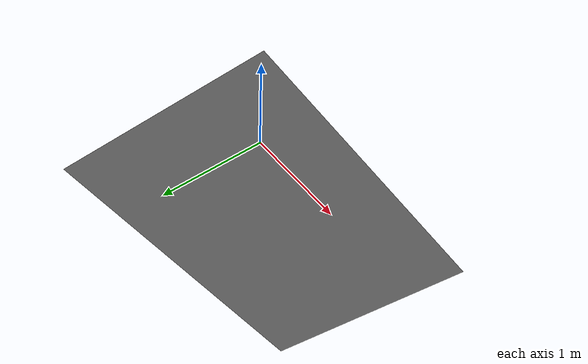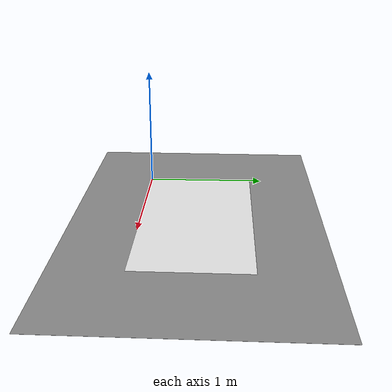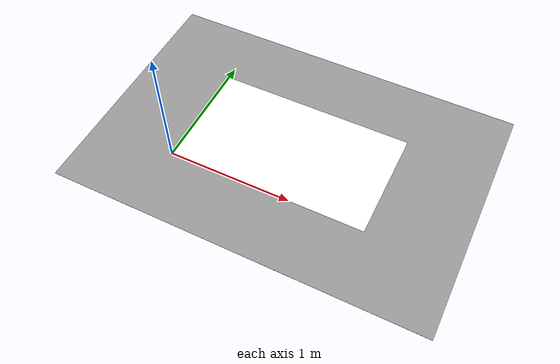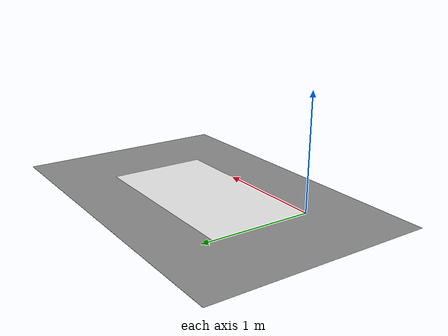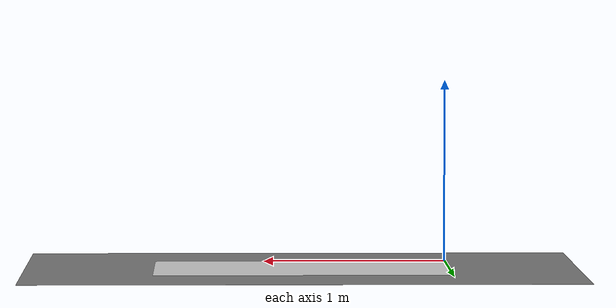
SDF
<?xml version="1.0"?>
<!--
  ライントレースのコース
  コース画像（2.5 mm/pixel，640 x 360 pixel 相当）を 1.6 m x 0.9 m の床に貼る．
  座標は mbd_phs3 と同じ（x 軸が右，y 軸が上，原点はコースの左下）．
-->
<sdf version="1.9">
  <model name="lf_course">
    <static>true</static>
    <link name="floor">
      <collision name="collision">
        <pose>0.8 0.45 -0.005 0 0 0</pose>
        <geometry>
          <box><size>3.0 2.0 0.01</size></box>
        </geometry>
        <surface>
          <friction><ode><mu>1.0</mu><mu2>1.0</mu2></ode></friction>
        </surface>
      </collision>
      <visual name="course">
        <pose>0 0 0.0005 0 0 0</pose>
        <geometry>
          <mesh><uri>model://lf_course/meshes/course.obj</uri></mesh>
        </geometry>
        <material>
          <ambient>1 1 1 1</ambient>
          <diffuse>1 1 1 1</diffuse>
          <specular>0 0 0 1</specular>
          <pbr>
            <metal>
              <albedo_map>model://lf_course/materials/textures/course2025.png</albedo_map>
              <roughness>1.0</roughness>
              <metalness>0.0</metalness>
            </metal>
          </pbr>
        </material>
      </visual>
      <visual name="surround">
        <pose>0.8 0.45 -0.0005 0 0 0</pose>
        <geometry>
          <box><size>3.0 2.0 0.001</size></box>
        </geometry>
        <material>
          <ambient>0.6 0.6 0.6 1</ambient>
          <diffuse>0.6 0.6 0.6 1</diffuse>
        </material>
      </visual>
    </link>
  </model>
</sdf>
